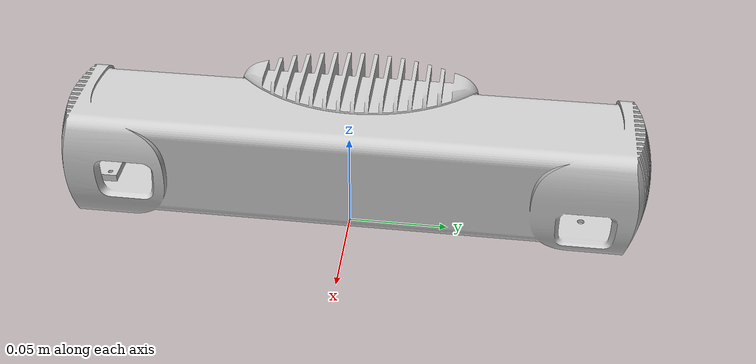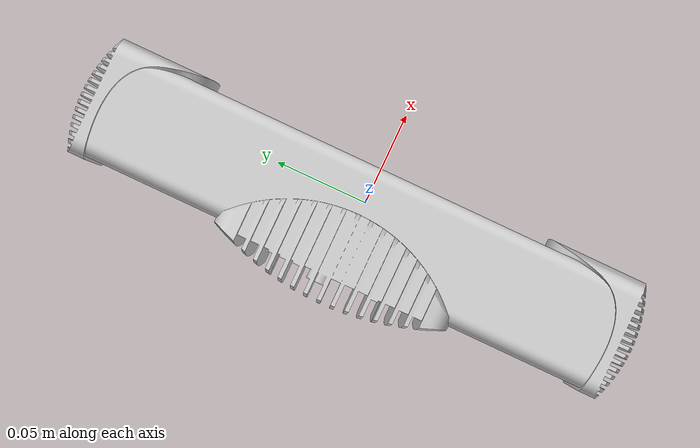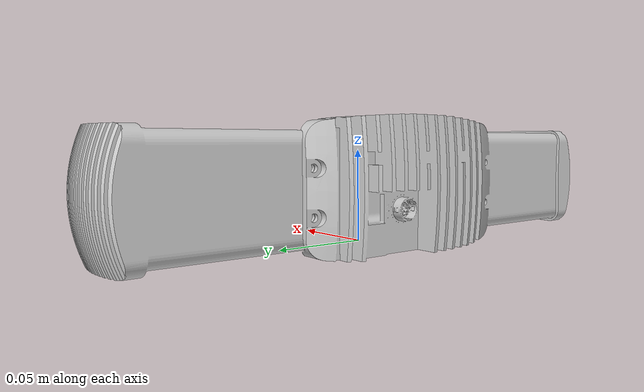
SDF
<?xml version="1.0" ?>
<sdf version="1.5">
	<model name="photoneo_s_sensor">
		<static>1</static>
		<pose>0 0 0.029 0 0 0</pose>
		<link name="link">
			<inertial>
				<mass>0.1</mass>
			</inertial>
			<visual name="visual">
				<transparency>0</transparency>
				<geometry>
					<mesh>
						<uri>model://photoneo_s_sensor/meshes/photoneo_s_sensor.stl</uri>
					</mesh>
				</geometry>
				<material>
					<script>
						<name>SensorPlacementOptimization/LightGray</name>
						<uri>file://materials/sensor_placement_optimization.material</uri>
					</script>
				</material>
			</visual>
			<sensor name="sensor" type="depth">
				<update_rate>5</update_rate>
				<camera>
					<horizontal_fov>0.672088562</horizontal_fov>
					<image>
						<width>2064</width>
						<height>1536</height>
						<format>B8G8R8</format>
					</image>
					<clip>
						<near>0.354</near>
						<far>0.588</far>
					</clip>
				</camera>
			</sensor>
		</link>
	</model>
</sdf>
